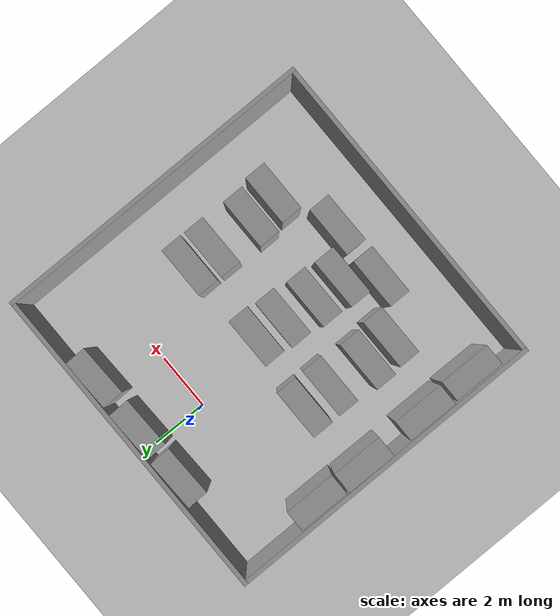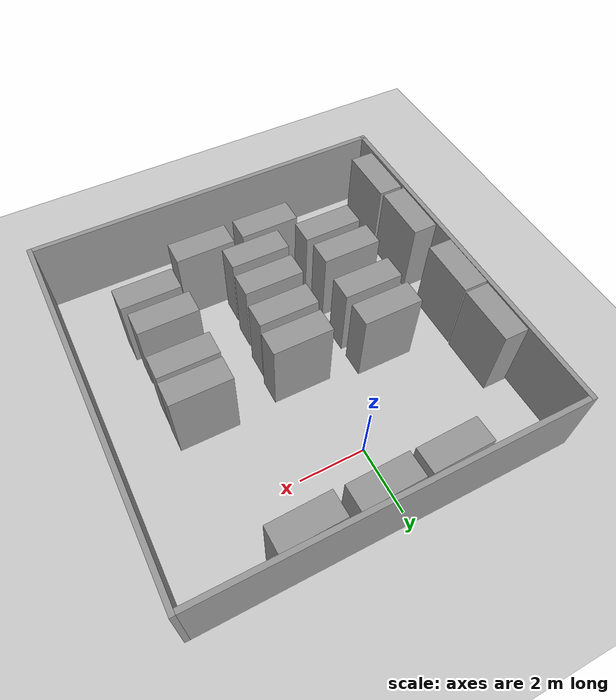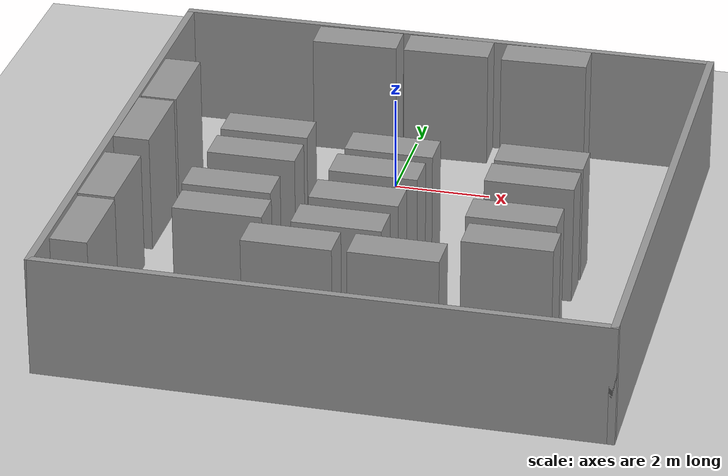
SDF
<sdf version="1.6">
 <world name="default">
  <light name="sun" type="directional">
   <pose>0 0 10 0 -0 0</pose>
   <diffuse>0.8 0.8 0.8 1</diffuse>
   <specular>0.1 0.1 0.1 1</specular>
   <attenuation>
    <range>1000</range>
    <constant>0.9</constant>
    <linear>0.01</linear>
    <quadratic>0.001</quadratic>
   </attenuation>
   <direction>-0.5 0.5 -1</direction>
  </light>
  <model name="ground_plane">
   <static>1</static>
   <link name="link">
    <collision name="collision">
     <geometry><plane><normal>0 0 1</normal><size>100 100</size></plane></geometry>
     <surface><friction><ode><mu>100</mu><mu2>50</mu2></ode></friction></surface>
    </collision>
    <visual name="visual">
     <cast_shadows>0</cast_shadows>
     <geometry><plane><normal>0 0 1</normal><size>100 100</size></plane></geometry>
     <material>
      <script><uri>file://media/materials/scripts/gazebo.material</uri><name>Gazebo/Grey</name></script>
     </material>
    </visual>
   </link>
  </model>
  <gravity>0 0 -9.8</gravity>
  <magnetic_field>6e-06 2.3e-05 -4.2e-05</magnetic_field>
  <atmosphere type="adiabatic"/>
  <physics name="default_physics" default="0" type="ode">
   <max_step_size>0.001</max_step_size>
   <real_time_factor>1</real_time_factor>
   <real_time_update_rate>1000</real_time_update_rate>
  </physics>
  <scene><ambient>0.4 0.4 0.4 1</ambient><background>0.7 0.7 0.7 1</background><shadows>1</shadows></scene>
  <spherical_coordinates>
   <surface_model>EARTH_WGS84</surface_model>
   <latitude_deg>0</latitude_deg>
   <longitude_deg>0</longitude_deg>
   <elevation>0</elevation>
   <heading_deg>0</heading_deg>
  </spherical_coordinates>
  <model name="C205_strict">
   <pose>0.587487 -3.35014 0 0 -0 0</pose>
   <link name="Wall_14">
    <collision name="Wall_14_Collision">
     <geometry><box><size>11.4 0.15 2.5</size></box></geometry>
     <pose>0 0 1.25 0 -0 0</pose>
    </collision>
    <visual name="Wall_14_Visual">
     <pose>0 0 1.25 0 -0 0</pose>
     <geometry><box><size>11.4 0.15 2.5</size></box></geometry>
     <material>
      <script><uri>file://media/materials/scripts/gazebo.material</uri><name>Gazebo/Grey</name></script>
      <ambient>1 1 1 1</ambient>
     </material>
    </visual>
    <pose>5.625 0 0 0 0 -1.5708</pose>
   </link>
   <link name="Wall_16">
    <collision name="Wall_16_Collision">
     <geometry><box><size>11.4 0.15 2.5</size></box></geometry>
     <pose>0 0 1.25 0 -0 0</pose>
    </collision>
    <visual name="Wall_16_Visual">
     <pose>0 0 1.25 0 -0 0</pose>
     <geometry><box><size>11.4 0.15 2.5</size></box></geometry>
     <material>
      <script><uri>file://media/materials/scripts/gazebo.material</uri><name>Gazebo/Grey</name></script>
      <ambient>1 1 1 1</ambient>
     </material>
    </visual>
    <pose>0 5.625 0 0 -0 3.14159</pose>
   </link>
   <link name="Wall_4">
    <collision name="Wall_4_Collision">
     <geometry><box><size>11.4 0.15 2.5</size></box></geometry>
     <pose>0 0 1.25 0 -0 0</pose>
    </collision>
    <visual name="Wall_4_Visual">
     <pose>0 0 1.25 0 -0 0</pose>
     <geometry><box><size>11.4 0.15 2.5</size></box></geometry>
     <material>
      <script><uri>file://media/materials/scripts/gazebo.material</uri><name>Gazebo/Grey</name></script>
      <ambient>1 1 1 1</ambient>
     </material>
    </visual>
    <pose>-5.625 0 0 0 -0 1.5708</pose>
   </link>
   <link name="Wall_9">
    <collision name="Wall_9_Collision">
     <geometry><box><size>11.4 0.15 2.5</size></box></geometry>
     <pose>0 0 1.25 0 -0 0</pose>
    </collision>
    <visual name="Wall_9_Visual">
     <pose>0 0 1.25 0 -0 0</pose>
     <geometry><box><size>11.4 0.15 2.5</size></box></geometry>
     <material>
      <script><uri>file://media/materials/scripts/gazebo.material</uri><name>Gazebo/Grey</name></script>
      <ambient>1 1 1 1</ambient>
     </material>
    </visual>
    <pose>0 -5.625 0 0 -0 0</pose>
   </link>
   <static>1</static>
  </model>
  <model name="C205_desk">
   <pose>-0.43839 -7.01164 0 0 -0 0</pose>
   <link name="Wall_18">
    <collision name="Wall_18_Collision">
     <geometry><box><size>1.8 0.75 2.5</size></box></geometry>
     <pose>0 0 1.25 0 -0 0</pose>
    </collision>
    <visual name="Wall_18_Visual">
     <pose>0 0 1.25 0 -0 0</pose>
     <geometry><box><size>1.8 0.75 2.5</size></box></geometry>
     <material>
      <script><uri>file://media/materials/scripts/gazebo.material</uri><name>Gazebo/Grey</name></script>
      <ambient>1 1 1 1</ambient>
     </material>
    </visual>
   </link>
   <static>1</static>
  </model>
  <model name="C205_desk_clone">
   <pose>1.65199 -6.99069 0 0 -0 0</pose>
   <link name="Wall_18">
    <collision name="Wall_18_Collision">
     <geometry><box><size>1.8 0.75 2.5</size></box></geometry>
     <pose>0 0 1.25 0 -0 0</pose>
    </collision>
    <visual name="Wall_18_Visual">
     <pose>0 0 1.25 0 -0 0</pose>
     <geometry><box><size>1.8 0.75 2.5</size></box></geometry>
     <material>
      <script><uri>file://media/materials/scripts/gazebo.material</uri><name>Gazebo/Grey</name></script>
      <ambient>1 1 1 1</ambient>
     </material>
    </visual>
   </link>
   <static>1</static>
  </model>
  <model name="C205_desk_clone_0">
   <pose>-2.07007 -6.04594 0 0 -0 0</pose>
   <link name="Wall_18">
    <collision name="Wall_18_Collision">
     <geometry><box><size>1.8 0.75 2.5</size></box></geometry>
     <pose>0 0 1.25 0 -0 0</pose>
    </collision>
    <visual name="Wall_18_Visual">
     <pose>0 0 1.25 0 -0 0</pose>
     <geometry><box><size>1.8 0.75 2.5</size></box></geometry>
     <material>
      <script><uri>file://media/materials/scripts/gazebo.material</uri><name>Gazebo/Grey</name></script>
      <ambient>1 1 1 1</ambient>
     </material>
    </visual>
   </link>
   <static>1</static>
  </model>
  <model name="C205_desk_clone_1">
   <pose>-2.1546 -5.05151 0 0 -0 0</pose>
   <link name="Wall_18">
    <collision name="Wall_18_Collision">
     <geometry><box><size>1.8 0.75 2.5</size></box></geometry>
     <pose>0 0 1.25 0 -0 0</pose>
    </collision>
    <visual name="Wall_18_Visual">
     <pose>0 0 1.25 0 -0 0</pose>
     <geometry><box><size>1.8 0.75 2.5</size></box></geometry>
     <material>
      <script><uri>file://media/materials/scripts/gazebo.material</uri><name>Gazebo/Grey</name></script>
      <ambient>1 1 1 1</ambient>
     </material>
    </visual>
   </link>
   <static>1</static>
  </model>
  <model name="C205_desk_clone_2">
   <pose>-2.03391 -3.636 0 0 -0 0</pose>
   <link name="Wall_18">
    <collision name="Wall_18_Collision">
     <geometry><box><size>1.8 0.75 2.5</size></box></geometry>
     <pose>0 0 1.25 0 -0 0</pose>
    </collision>
    <visual name="Wall_18_Visual">
     <pose>0 0 1.25 0 -0 0</pose>
     <geometry><box><size>1.8 0.75 2.5</size></box></geometry>
     <material>
      <script><uri>file://media/materials/scripts/gazebo.material</uri><name>Gazebo/Grey</name></script>
      <ambient>1 1 1 1</ambient>
     </material>
    </visual>
   </link>
   <static>1</static>
  </model>
  <model name="C205_desk_clone_3">
   <pose>-2.04153 -2.60539 0 0 -0 0</pose>
   <link name="Wall_18">
    <collision name="Wall_18_Collision">
     <geometry><box><size>1.8 0.75 2.5</size></box></geometry>
     <pose>0 0 1.25 0 -0 0</pose>
    </collision>
    <visual name="Wall_18_Visual">
     <pose>0 0 1.25 0 -0 0</pose>
     <geometry><box><size>1.8 0.75 2.5</size></box></geometry>
     <material>
      <script><uri>file://media/materials/scripts/gazebo.material</uri><name>Gazebo/Grey</name></script>
      <ambient>1 1 1 1</ambient>
     </material>
    </visual>
   </link>
   <static>1</static>
  </model>
  <model name="C205_desk_clone_4">
   <pose>0.315677 -6.07355 0 0 -0 0</pose>
   <link name="Wall_18">
    <collision name="Wall_18_Collision">
     <geometry><box><size>1.8 0.75 2.5</size></box></geometry>
     <pose>0 0 1.25 0 -0 0</pose>
    </collision>
    <visual name="Wall_18_Visual">
     <pose>0 0 1.25 0 -0 0</pose>
     <geometry><box><size>1.8 0.75 2.5</size></box></geometry>
     <material>
      <script><uri>file://media/materials/scripts/gazebo.material</uri><name>Gazebo/Grey</name></script>
      <ambient>1 1 1 1</ambient>
     </material>
    </visual>
   </link>
   <static>1</static>
  </model>
  <model name="C205_desk_clone_5">
   <pose>0.399069 -5.01024 0 0 -0 0</pose>
   <link name="Wall_18">
    <collision name="Wall_18_Collision">
     <geometry><box><size>1.8 0.75 2.5</size></box></geometry>
     <pose>0 0 1.25 0 -0 0</pose>
    </collision>
    <visual name="Wall_18_Visual">
     <pose>0 0 1.25 0 -0 0</pose>
     <geometry><box><size>1.8 0.75 2.5</size></box></geometry>
     <material>
      <script><uri>file://media/materials/scripts/gazebo.material</uri><name>Gazebo/Grey</name></script>
      <ambient>1 1 1 1</ambient>
     </material>
    </visual>
   </link>
   <static>1</static>
  </model>
  <model name="C205_desk_clone_6">
   <pose>0.517413 -3.8563 0 0 -0 0</pose>
   <link name="Wall_18">
    <collision name="Wall_18_Collision">
     <geometry><box><size>1.8 0.75 2.5</size></box></geometry>
     <pose>0 0 1.25 0 -0 0</pose>
    </collision>
    <visual name="Wall_18_Visual">
     <pose>0 0 1.25 0 -0 0</pose>
     <geometry><box><size>1.8 0.75 2.5</size></box></geometry>
     <material>
      <script><uri>file://media/materials/scripts/gazebo.material</uri><name>Gazebo/Grey</name></script>
      <ambient>1 1 1 1</ambient>
     </material>
    </visual>
   </link>
   <static>1</static>
  </model>
  <model name="C205_desk_clone_7">
   <pose>0.599152 -2.8639 0 0 -0 0</pose>
   <link name="Wall_18">
    <collision name="Wall_18_Collision">
     <geometry><box><size>1.8 0.75 2.5</size></box></geometry>
     <pose>0 0 1.25 0 -0 0</pose>
    </collision>
    <visual name="Wall_18_Visual">
     <pose>0 0 1.25 0 -0 0</pose>
     <geometry><box><size>1.8 0.75 2.5</size></box></geometry>
     <material>
      <script><uri>file://media/materials/scripts/gazebo.material</uri><name>Gazebo/Grey</name></script>
      <ambient>1 1 1 1</ambient>
     </material>
    </visual>
   </link>
   <static>1</static>
  </model>
  <model name="C205_desk_clone_8">
   <pose>3.67477 -6.08964 0 0 -0 0</pose>
   <link name="Wall_18">
    <collision name="Wall_18_Collision">
     <geometry><box><size>1.8 0.75 2.5</size></box></geometry>
     <pose>0 0 1.25 0 -0 0</pose>
    </collision>
    <visual name="Wall_18_Visual">
     <pose>0 0 1.25 0 -0 0</pose>
     <geometry><box><size>1.8 0.75 2.5</size></box></geometry>
     <material>
      <script><uri>file://media/materials/scripts/gazebo.material</uri><name>Gazebo/Grey</name></script>
      <ambient>1 1 1 1</ambient>
     </material>
    </visual>
   </link>
   <static>1</static>
  </model>
  <model name="C205_desk_clone_9">
   <pose>3.54754 -5.09478 0 0 -0 0</pose>
   <link name="Wall_18">
    <collision name="Wall_18_Collision">
     <geometry><box><size>1.8 0.75 2.5</size></box></geometry>
     <pose>0 0 1.25 0 -0 0</pose>
    </collision>
    <visual name="Wall_18_Visual">
     <pose>0 0 1.25 0 -0 0</pose>
     <geometry><box><size>1.8 0.75 2.5</size></box></geometry>
     <material>
      <script><uri>file://media/materials/scripts/gazebo.material</uri><name>Gazebo/Grey</name></script>
      <ambient>1 1 1 1</ambient>
     </material>
    </visual>
   </link>
   <static>1</static>
  </model>
  <model name="C205_desk_clone_10">
   <pose>3.59516 -3.56227 0 0 -0 0</pose>
   <link name="Wall_18">
    <collision name="Wall_18_Collision">
     <geometry><box><size>1.8 0.75 2.5</size></box></geometry>
     <pose>0 0 1.25 0 -0 0</pose>
    </collision>
    <visual name="Wall_18_Visual">
     <pose>0 0 1.25 0 -0 0</pose>
     <geometry><box><size>1.8 0.75 2.5</size></box></geometry>
     <material>
      <script><uri>file://media/materials/scripts/gazebo.material</uri><name>Gazebo/Grey</name></script>
      <ambient>1 1 1 1</ambient>
     </material>
    </visual>
   </link>
   <static>1</static>
  </model>
  <model name="C205_desk_clone_11">
   <pose>3.60865 -2.67604 0 0 -0 0</pose>
   <link name="Wall_18">
    <collision name="Wall_18_Collision">
     <geometry><box><size>1.8 0.75 2.5</size></box></geometry>
     <pose>0 0 1.25 0 -0 0</pose>
    </collision>
    <visual name="Wall_18_Visual">
     <pose>0 0 1.25 0 -0 0</pose>
     <geometry><box><size>1.8 0.75 2.5</size></box></geometry>
     <material>
      <script><uri>file://media/materials/scripts/gazebo.material</uri><name>Gazebo/Grey</name></script>
      <ambient>1 1 1 1</ambient>
     </material>
    </visual>
   </link>
   <static>1</static>
  </model>
  <model name="C205_desk_clone_12">
   <pose>-4.51827 -7.25843 0 0 0 -1.57452</pose>
   <link name="Wall_18">
    <collision name="Wall_18_Collision">
     <geometry><box><size>1.8 0.75 2.5</size></box></geometry>
     <pose>0 0 1.25 0 -0 0</pose>
    </collision>
    <visual name="Wall_18_Visual">
     <pose>0 0 1.25 0 -0 0</pose>
     <geometry><box><size>1.8 0.75 2.5</size></box></geometry>
     <material>
      <script><uri>file://media/materials/scripts/gazebo.material</uri><name>Gazebo/Grey</name></script>
      <ambient>1 1 1 1</ambient>
     </material>
    </visual>
   </link>
   <static>1</static>
  </model>
  <model name="C205_desk_clone_12_clone">
   <pose>-4.55035 -5.37163 0 0 0 -1.57452</pose>
   <link name="Wall_18">
    <collision name="Wall_18_Collision">
     <geometry><box><size>1.8 0.75 2.5</size></box></geometry>
     <pose>0 0 1.25 0 -0 0</pose>
    </collision>
    <visual name="Wall_18_Visual">
     <pose>0 0 1.25 0 -0 0</pose>
     <geometry><box><size>1.8 0.75 2.5</size></box></geometry>
     <material>
      <script><uri>file://media/materials/scripts/gazebo.material</uri><name>Gazebo/Grey</name></script>
      <ambient>1 1 1 1</ambient>
     </material>
    </visual>
   </link>
   <static>1</static>
  </model>
  <model name="C205_desk_clone_12_clone_0">
   <pose>-4.54934 -1.01853 0 0 0 -1.57452</pose>
   <link name="Wall_18">
    <collision name="Wall_18_Collision">
     <geometry><box><size>1.8 0.75 2.5</size></box></geometry>
     <pose>0 0 1.25 0 -0 0</pose>
    </collision>
    <visual name="Wall_18_Visual">
     <pose>0 0 1.25 0 -0 0</pose>
     <geometry><box><size>1.8 0.75 2.5</size></box></geometry>
     <material>
      <script><uri>file://media/materials/scripts/gazebo.material</uri><name>Gazebo/Grey</name></script>
      <ambient>1 1 1 1</ambient>
     </material>
    </visual>
   </link>
   <static>1</static>
  </model>
  <model name="C205_desk_clone_12_clone_1">
   <pose>-4.58168 -2.88432 0 0 0 -1.57452</pose>
   <link name="Wall_18">
    <collision name="Wall_18_Collision">
     <geometry><box><size>1.8 0.75 2.5</size></box></geometry>
     <pose>0 0 1.25 0 -0 0</pose>
    </collision>
    <visual name="Wall_18_Visual">
     <pose>0 0 1.25 0 -0 0</pose>
     <geometry><box><size>1.8 0.75 2.5</size></box></geometry>
     <material>
      <script><uri>file://media/materials/scripts/gazebo.material</uri><name>Gazebo/Grey</name></script>
      <ambient>1 1 1 1</ambient>
     </material>
    </visual>
   </link>
   <static>1</static>
  </model>
  <model name="C205_desk_clone_12_clone_2">
   <pose>-1.23434 1.78601 0 0 -0 0.023944</pose>
   <link name="Wall_18">
    <collision name="Wall_18_Collision">
     <geometry><box><size>1.8 0.75 2.5</size></box></geometry>
     <pose>0 0 1.25 0 -0 0</pose>
    </collision>
    <visual name="Wall_18_Visual">
     <pose>0 0 1.25 0 -0 0</pose>
     <geometry><box><size>1.8 0.75 2.5</size></box></geometry>
     <material>
      <script><uri>file://media/materials/scripts/gazebo.material</uri><name>Gazebo/Grey</name></script>
      <ambient>1 1 1 1</ambient>
     </material>
    </visual>
   </link>
   <static>1</static>
  </model>
  <model name="C205_desk_clone_12_clone_2_clone">
   <pose>0.729044 1.81637 0 0 -0 0.023944</pose>
   <link name="Wall_18">
    <collision name="Wall_18_Collision">
     <geometry><box><size>1.8 0.75 2.5</size></box></geometry>
     <pose>0 0 1.25 0 -0 0</pose>
    </collision>
    <visual name="Wall_18_Visual">
     <pose>0 0 1.25 0 -0 0</pose>
     <geometry><box><size>1.8 0.75 2.5</size></box></geometry>
     <material>
      <script><uri>file://media/materials/scripts/gazebo.material</uri><name>Gazebo/Grey</name></script>
      <ambient>1 1 1 1</ambient>
     </material>
    </visual>
   </link>
   <static>1</static>
  </model>
  <model name="C205_desk_clone_12_clone_2_clone_0">
   <pose>2.81817 1.82266 0 0 -0 0.023944</pose>
   <link name="Wall_18">
    <collision name="Wall_18_Collision">
     <geometry><box><size>1.8 0.75 2.5</size></box></geometry>
     <pose>0 0 1.25 0 -0 0</pose>
    </collision>
    <visual name="Wall_18_Visual">
     <pose>0 0 1.25 0 -0 0</pose>
     <geometry><box><size>1.8 0.75 2.5</size></box></geometry>
     <material>
      <script><uri>file://media/materials/scripts/gazebo.material</uri><name>Gazebo/Grey</name></script>
      <ambient>1 1 1 1</ambient>
     </material>
    </visual>
   </link>
   <static>1</static>
  </model>
 </world>
</sdf>
